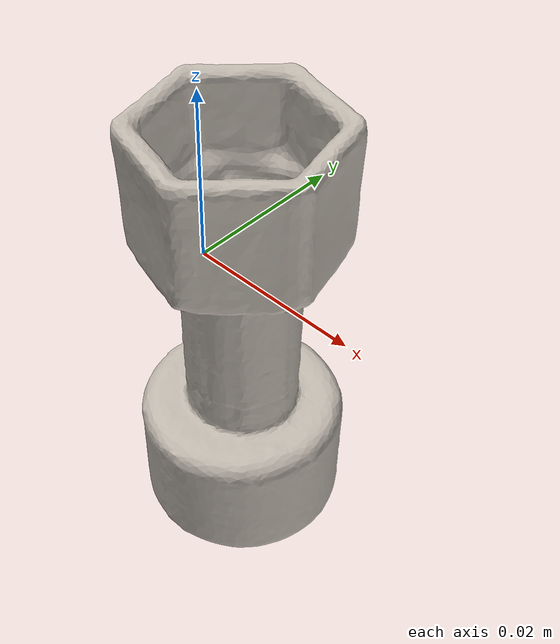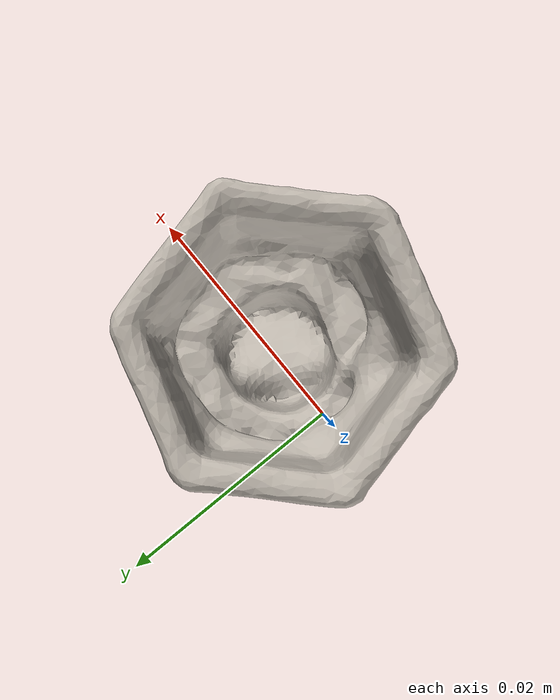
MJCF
<mujoco model="bread">
  <asset>
    <mesh file="nontextured.stl" name="obj_mesh" scale="0.8 0.8 0.8"/>
    <texture file="../../../../../textures/bread.png" type="2d" name="tex-bread" />
    <material name="bread" reflectance="0.7" texrepeat="15 15" texture="tex-bread" texuniform="true"/>
  </asset>
  <worldbody>
    <body>
      <body name="collision">
        <geom pos="0.033196500000000004 -0.0034545 -0.033313999999999996" mesh="obj_mesh" type="mesh" solimp="0.998 0.998 0.001" solref="0.001 1" density="50" friction="0.95 0.3 0.1"  material="bread" group="1" condim="4"/>
      </body>
      <body name="visual">
        <geom pos="0.033196500000000004 -0.0034545 -0.033313999999999996" mesh="obj_mesh" type="mesh" material="bread"  conaffinity="0" contype="0"  group="0" mass="0.0001"/>
        <geom pos="0.033196500000000004 -0.0034545 -0.033313999999999996" mesh="obj_mesh" type="mesh" material="bread"  conaffinity="0" contype="0"  group="1" mass="0.0001"/>
      </body>
      <site rgba="0 0 0 0" size="0.005" pos="0 0 -0.033361" name="bottom_site"/>
      <site rgba="0 0 0 0" size="0.005" pos="0 0 0.033361" name="top_site"/>
      <site rgba="0 0 0 0" size="0.005" pos="0.0153255 0.015321500000000002 0.033361" name="horizontal_radius_site"/>
    </body>
  </worldbody>
</mujoco>
